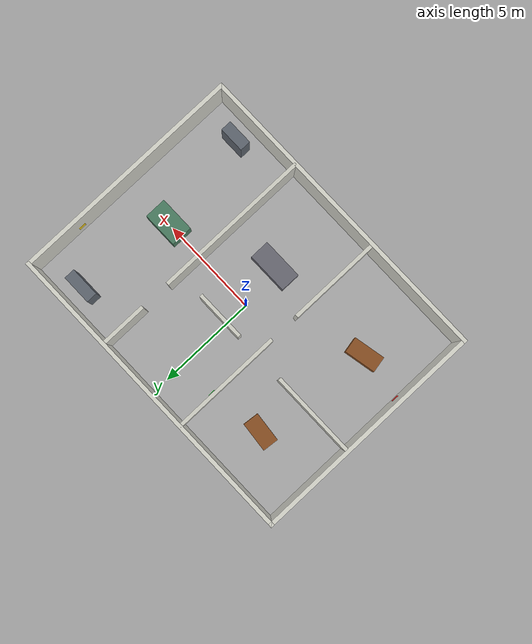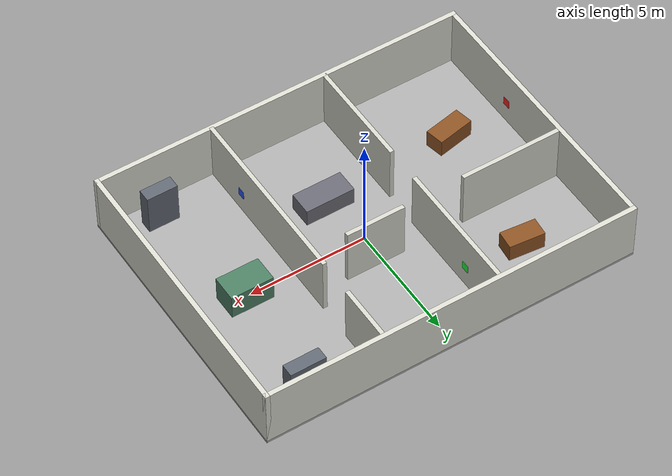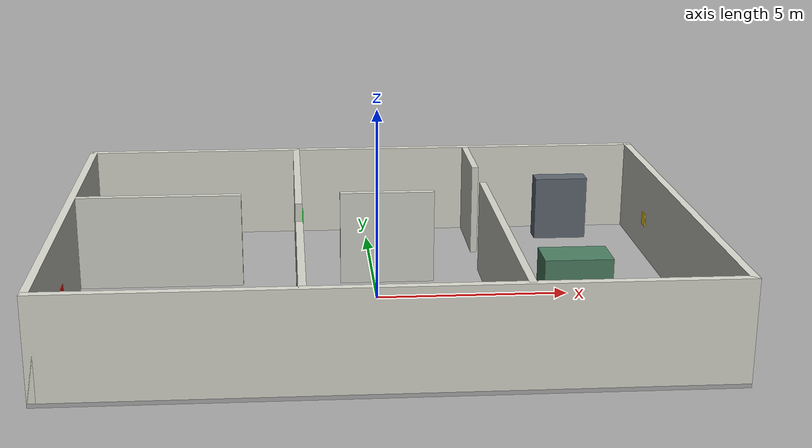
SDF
<?xml version="1.0"?>
<sdf version="1.10">
  <world name="dev_office_01">
    <physics name="physics" type="ignored">
      <max_step_size>0.004</max_step_size>
      <real_time_factor>1.0</real_time_factor>
      <real_time_update_rate>250</real_time_update_rate>
    </physics>
    <gravity>0 0 -9.81</gravity>
    <scene>
      <ambient>0.35 0.35 0.38 1</ambient>
      <background>0.72 0.78 0.86 1</background>
      <shadows>true</shadows>
    </scene>

    <plugin filename="gz-sim-physics-system" name="gz::sim::systems::Physics"/>
    <plugin filename="gz-sim-user-commands-system" name="gz::sim::systems::UserCommands"/>
    <plugin filename="gz-sim-scene-broadcaster-system" name="gz::sim::systems::SceneBroadcaster"/>
    <plugin filename="gz-sim-sensors-system" name="gz::sim::systems::Sensors">
      <render_engine>ogre2</render_engine>
    </plugin>
    <plugin filename="gz-sim-imu-system" name="gz::sim::systems::Imu"/>
    <plugin filename="gz-sim-contact-system" name="gz::sim::systems::Contact"/>

    <light name="sun" type="directional">
      <cast_shadows>true</cast_shadows>
      <pose>0 0 10 0 0 0</pose>
      <diffuse>0.85 0.85 0.85 1</diffuse>
      <specular>0.2 0.2 0.2 1</specular>
      <attenuation><range>1000</range><constant>0.9</constant><linear>0.01</linear><quadratic>0.001</quadratic></attenuation>
      <direction>-0.4 0.2 -0.9</direction>
    </light>

    <model name="floor">
      <static>true</static>
      <!-- Keep the walking surface exactly at world z=0. -->
      <pose>0 0 -0.05 0 0 0</pose>
      <link name="floor_link">
        <collision name="collision"><geometry><box><size>16 12 0.10</size></box></geometry></collision>
        <visual name="visual">
          <geometry><box><size>16 12 0.10</size></box></geometry>
          <material><ambient>0.58 0.58 0.58 1</ambient><diffuse>0.68 0.68 0.68 1</diffuse></material>
        </visual>
      </link>
    </model>

    <!-- Outer boundary. -->
    <model name="wall_north"><static>true</static><pose>0 5.9 1.25 0 0 0</pose><link name="wall"><collision name="c"><geometry><box><size>16 0.2 2.5</size></box></geometry></collision><visual name="v"><geometry><box><size>16 0.2 2.5</size></box></geometry><material><ambient>0.76 0.76 0.72 1</ambient><diffuse>0.86 0.86 0.82 1</diffuse></material></visual></link></model>
    <model name="wall_south"><static>true</static><pose>0 -5.9 1.25 0 0 0</pose><link name="wall"><collision name="c"><geometry><box><size>16 0.2 2.5</size></box></geometry></collision><visual name="v"><geometry><box><size>16 0.2 2.5</size></box></geometry><material><ambient>0.76 0.76 0.72 1</ambient><diffuse>0.86 0.86 0.82 1</diffuse></material></visual></link></model>
    <model name="wall_west"><static>true</static><pose>-7.9 0 1.25 0 0 0</pose><link name="wall"><collision name="c"><geometry><box><size>0.2 12 2.5</size></box></geometry></collision><visual name="v"><geometry><box><size>0.2 12 2.5</size></box></geometry><material><ambient>0.76 0.76 0.72 1</ambient><diffuse>0.86 0.86 0.82 1</diffuse></material></visual></link></model>
    <model name="wall_east"><static>true</static><pose>7.9 0 1.25 0 0 0</pose><link name="wall"><collision name="c"><geometry><box><size>0.2 12 2.5</size></box></geometry></collision><visual name="v"><geometry><box><size>0.2 12 2.5</size></box></geometry><material><ambient>0.76 0.76 0.72 1</ambient><diffuse>0.86 0.86 0.82 1</diffuse></material></visual></link></model>

    <!-- Interior walls leave 1.4-1.6 m door openings and create branches. -->
    <model name="wall_v1_s"><static>true</static><pose>-2 -3.55 1.25 0 0 0</pose><link name="wall"><collision name="c"><geometry><box><size>0.18 4.7 2.5</size></box></geometry></collision><visual name="v"><geometry><box><size>0.18 4.7 2.5</size></box></geometry><material><ambient>0.72 0.72 0.68 1</ambient><diffuse>0.84 0.84 0.80 1</diffuse></material></visual></link></model>
    <model name="wall_v1_n"><static>true</static><pose>-2 3.1 1.25 0 0 0</pose><link name="wall"><collision name="c"><geometry><box><size>0.18 5.6 2.5</size></box></geometry></collision><visual name="v"><geometry><box><size>0.18 5.6 2.5</size></box></geometry><material><ambient>0.72 0.72 0.68 1</ambient><diffuse>0.84 0.84 0.80 1</diffuse></material></visual></link></model>
    <model name="wall_v2_s"><static>true</static><pose>3 -1.95 1.25 0 0 0</pose><link name="wall"><collision name="c"><geometry><box><size>0.18 7.9 2.5</size></box></geometry></collision><visual name="v"><geometry><box><size>0.18 7.9 2.5</size></box></geometry><material><ambient>0.72 0.72 0.68 1</ambient><diffuse>0.84 0.84 0.80 1</diffuse></material></visual></link></model>
    <model name="wall_v2_n"><static>true</static><pose>3 4.7 1.25 0 0 0</pose><link name="wall"><collision name="c"><geometry><box><size>0.18 2.4 2.5</size></box></geometry></collision><visual name="v"><geometry><box><size>0.18 2.4 2.5</size></box></geometry><material><ambient>0.72 0.72 0.68 1</ambient><diffuse>0.84 0.84 0.80 1</diffuse></material></visual></link></model>
    <model name="wall_h1_w"><static>true</static><pose>-5.7 1.25 1.25 0 0 0</pose><link name="wall"><collision name="c"><geometry><box><size>4.4 0.18 2.5</size></box></geometry></collision><visual name="v"><geometry><box><size>4.4 0.18 2.5</size></box></geometry><material><ambient>0.72 0.72 0.68 1</ambient><diffuse>0.84 0.84 0.80 1</diffuse></material></visual></link></model>
    <model name="wall_h1_e"><static>true</static><pose>0.35 1.25 1.25 0 0 0</pose><link name="wall"><collision name="c"><geometry><box><size>2.5 0.18 2.5</size></box></geometry></collision><visual name="v"><geometry><box><size>2.5 0.18 2.5</size></box></geometry><material><ambient>0.72 0.72 0.68 1</ambient><diffuse>0.84 0.84 0.80 1</diffuse></material></visual></link></model>

    <!-- Furniture is deliberately simple geometry: collision fidelity and
         controllable occlusion matter more than decorative assets in v0. -->
    <model name="desk_01"><static>true</static><pose>-5.4 -2.4 0.38 0 0 0.2</pose><link name="desk"><collision name="c"><geometry><box><size>1.6 0.8 0.76</size></box></geometry></collision><visual name="v"><geometry><box><size>1.6 0.8 0.76</size></box></geometry><material><ambient>0.34 0.19 0.08 1</ambient><diffuse>0.55 0.32 0.14 1</diffuse></material></visual></link></model>
    <model name="desk_02"><static>true</static><pose>-4.7 3.5 0.38 0 0 -0.1</pose><link name="desk"><collision name="c"><geometry><box><size>1.5 0.8 0.76</size></box></geometry></collision><visual name="v"><geometry><box><size>1.5 0.8 0.76</size></box></geometry><material><ambient>0.34 0.19 0.08 1</ambient><diffuse>0.55 0.32 0.14 1</diffuse></material></visual></link></model>
    <model name="meeting_table"><static>true</static><pose>0.4 -2.2 0.38 0 0 0</pose><link name="table"><collision name="c"><geometry><box><size>2.1 1.0 0.76</size></box></geometry></collision><visual name="v"><geometry><box><size>2.1 1.0 0.76</size></box></geometry><material><ambient>0.25 0.25 0.28 1</ambient><diffuse>0.42 0.42 0.46 1</diffuse></material></visual></link></model>
    <model name="cabinet_01"><static>true</static><pose>5.9 -4.9 0.9 0 0 0</pose><link name="cabinet"><collision name="c"><geometry><box><size>1.3 0.55 1.8</size></box></geometry></collision><visual name="v"><geometry><box><size>1.3 0.55 1.8</size></box></geometry><material><ambient>0.22 0.24 0.26 1</ambient><diffuse>0.38 0.41 0.45 1</diffuse></material></visual></link></model>
    <model name="cabinet_02"><static>true</static><pose>5.7 4.9 0.9 0 0 0</pose><link name="cabinet"><collision name="c"><geometry><box><size>1.5 0.55 1.8</size></box></geometry></collision><visual name="v"><geometry><box><size>1.5 0.55 1.8</size></box></geometry><material><ambient>0.22 0.24 0.26 1</ambient><diffuse>0.38 0.41 0.45 1</diffuse></material></visual></link></model>
    <model name="island_01"><static>true</static><pose>5.2 0.0 0.55 0 0 0</pose><link name="island"><collision name="c"><geometry><box><size>1.8 1.1 1.1</size></box></geometry></collision><visual name="v"><geometry><box><size>1.8 1.1 1.1</size></box></geometry><material><ambient>0.18 0.29 0.23 1</ambient><diffuse>0.30 0.50 0.39 1</diffuse></material></visual></link></model>

    <!-- Registered task targets. Geometry is evaluator-visible; policy input
         remains LiDAR / camera observations and the online occupancy belief. -->
    <model name="target_panel_01"><static>true</static><pose>-7.76 -2.0 1.05 0 0 0</pose><link name="target"><visual name="v"><geometry><box><size>0.02 0.35 0.35</size></box></geometry><material><ambient>0.9 0.1 0.1 1</ambient><diffuse>1 0.15 0.15 1</diffuse></material></visual></link></model>
    <model name="target_panel_02"><static>true</static><pose>-1.86 3.9 1.05 0 0 0</pose><link name="target"><visual name="v"><geometry><box><size>0.02 0.35 0.35</size></box></geometry><material><ambient>0.1 0.8 0.2 1</ambient><diffuse>0.15 1 0.25 1</diffuse></material></visual></link></model>
    <model name="target_panel_03"><static>true</static><pose>3.14 -3.6 1.05 0 0 0</pose><link name="target"><visual name="v"><geometry><box><size>0.02 0.35 0.35</size></box></geometry><material><ambient>0.1 0.25 0.9 1</ambient><diffuse>0.15 0.35 1 1</diffuse></material></visual></link></model>
    <model name="target_panel_04"><static>true</static><pose>7.76 3.0 1.05 0 0 3.14159265</pose><link name="target"><visual name="v"><geometry><box><size>0.02 0.35 0.35</size></box></geometry><material><ambient>0.9 0.75 0.1 1</ambient><diffuse>1 0.85 0.15 1</diffuse></material></visual></link></model>
  </world>
</sdf>
